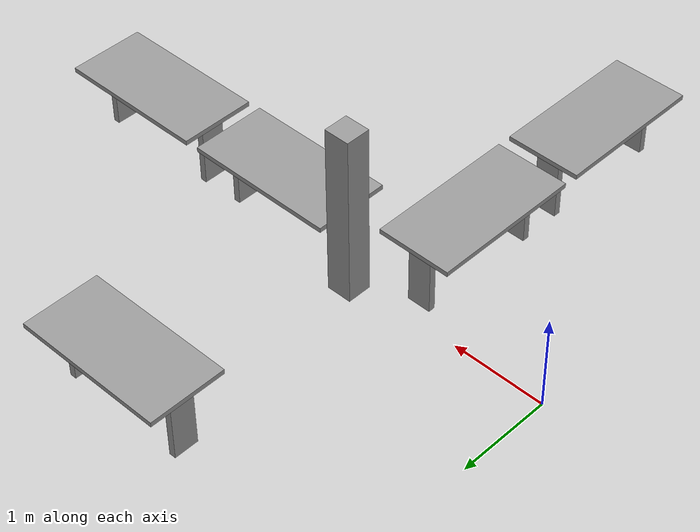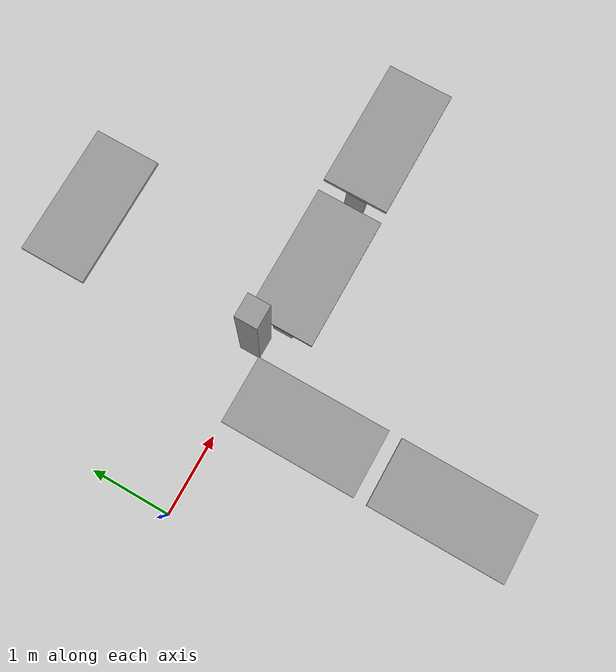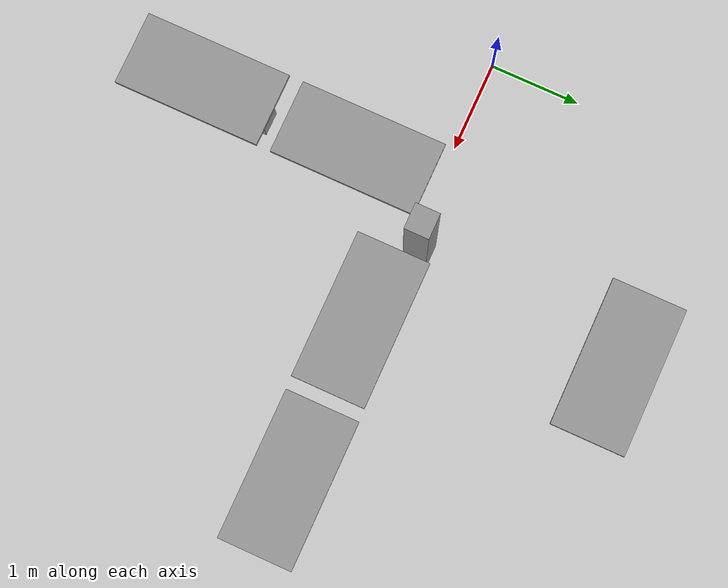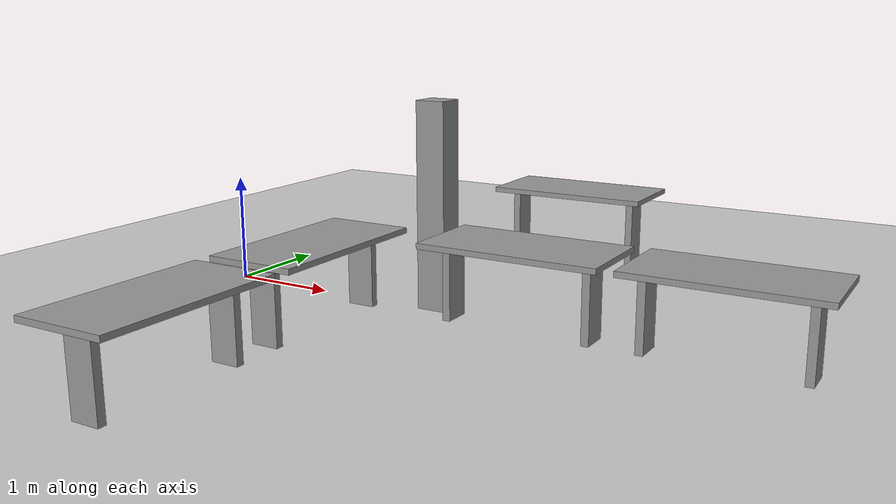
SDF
<sdf version="1.6">
 <world name="default">
  <model name="ground_plane">
   <static>1</static>
   <link name="link">
    <collision name="collision">
     <geometry><plane><normal>0 0 1</normal><size>100 100</size></plane></geometry>
     <surface><friction><ode><mu>100</mu><mu2>50</mu2></ode></friction></surface>
    </collision>
    <visual name="visual">
     <cast_shadows>0</cast_shadows>
     <geometry><plane><normal>0 0 1</normal><size>100 100</size></plane></geometry>
     <material>
      <script><uri>file://media/materials/scripts/gazebo.material</uri><name>Gazebo/Grey</name></script>
     </material>
    </visual>
   </link>
  </model>
  <model name="table2_1_2_clone_0_clone">
   <link name="link_0">
    <pose>0.065308 0.022644 0.260892 0 -0 0</pose>
    <inertial>
     <mass>0.0176486</mass>
     <inertia>
      <ixx>0.00156504</ixx>
      <ixy>0</ixy>
      <ixz>0</ixz>
      <iyy>0.00147786</iyy>
      <iyz>0</iyz>
      <izz>0.00010146</izz>
     </inertia>
    </inertial>
    <visual name="visual">
     <geometry><box><size>0.0697 0.253231 0.7</size></box></geometry>
     <material>
      <lighting>1</lighting>
      <script><uri>file://media/materials/scripts/gazebo.material</uri><name>Gazebo/Grey</name></script>
      <ambient>0.3 0.3 0.3 1</ambient>
      <diffuse>0.7 0.7 0.7 1</diffuse>
      <specular>0.01 0.01 0.01 1</specular>
      <emissive>0 0 0 1</emissive>
      <shader type="vertex"><normal_map>__default__</normal_map></shader>
     </material>
    </visual>
    <collision name="collision">
     <geometry><box><size>0.0697 0.253231 0.7</size></box></geometry>
     <surface>
      <friction>
       <ode><mu>1</mu><mu2>1</mu2><fdir1>0 0 0</fdir1><slip1>0</slip1><slip2>0</slip2></ode>
       <torsional>
        <coefficient>1</coefficient>
        <patch_radius>0</patch_radius>
        <surface_radius>0</surface_radius>
        <use_patch_radius>1</use_patch_radius>
        <ode><slip>0</slip></ode>
       </torsional>
      </friction>
      <bounce><restitution_coefficient>0</restitution_coefficient><threshold>1e+06</threshold></bounce>
      <contact>
       <collide_without_contact>0</collide_without_contact>
       <collide_without_contact_bitmask>1</collide_without_contact_bitmask>
       <collide_bitmask>1</collide_bitmask>
       <ode>
        <soft_cfm>0</soft_cfm>
        <soft_erp>0.2</soft_erp>
        <kp>1e+13</kp>
        <kd>1</kd>
        <max_vel>0.01</max_vel>
        <min_depth>0</min_depth>
       </ode>
       <bullet>
        <split_impulse>1</split_impulse>
        <split_impulse_penetration_threshold>-0.01</split_impulse_penetration_threshold>
        <soft_cfm>0</soft_cfm>
        <soft_erp>0.2</soft_erp>
        <kp>1e+13</kp>
        <kd>1</kd>
       </bullet>
      </contact>
     </surface>
    </collision>
   </link>
   <link name="link_0_clone">
    <pose>1.3547 0.013267 0.260893 0 -0 0</pose>
    <inertial>
     <mass>0.0176486</mass>
     <inertia>
      <ixx>0.00156504</ixx>
      <ixy>0</ixy>
      <ixz>0</ixz>
      <iyy>0.00147786</iyy>
      <iyz>0</iyz>
      <izz>0.00010146</izz>
     </inertia>
    </inertial>
    <visual name="visual">
     <geometry><box><size>0.0697 0.253231 0.7</size></box></geometry>
     <material>
      <lighting>1</lighting>
      <script><uri>file://media/materials/scripts/gazebo.material</uri><name>Gazebo/Grey</name></script>
      <ambient>0.3 0.3 0.3 1</ambient>
      <diffuse>0.7 0.7 0.7 1</diffuse>
      <specular>0.01 0.01 0.01 1</specular>
      <emissive>0 0 0 1</emissive>
      <shader type="vertex"><normal_map>__default__</normal_map></shader>
     </material>
    </visual>
    <collision name="collision">
     <geometry><box><size>0.0697 0.253231 0.7</size></box></geometry>
     <surface>
      <friction>
       <ode><mu>1</mu><mu2>1</mu2><fdir1>0 0 0</fdir1><slip1>0</slip1><slip2>0</slip2></ode>
       <torsional>
        <coefficient>1</coefficient>
        <patch_radius>0</patch_radius>
        <surface_radius>0</surface_radius>
        <use_patch_radius>1</use_patch_radius>
        <ode><slip>0</slip></ode>
       </torsional>
      </friction>
      <bounce><restitution_coefficient>0</restitution_coefficient><threshold>1e+06</threshold></bounce>
      <contact>
       <collide_without_contact>0</collide_without_contact>
       <collide_without_contact_bitmask>1</collide_without_contact_bitmask>
       <collide_bitmask>1</collide_bitmask>
       <ode>
        <soft_cfm>0</soft_cfm>
        <soft_erp>0.2</soft_erp>
        <kp>1e+13</kp>
        <kd>1</kd>
        <max_vel>0.01</max_vel>
        <min_depth>0</min_depth>
       </ode>
       <bullet>
        <split_impulse>1</split_impulse>
        <split_impulse_penetration_threshold>-0.01</split_impulse_penetration_threshold>
        <soft_cfm>0</soft_cfm>
        <soft_erp>0.2</soft_erp>
        <kp>1e+13</kp>
        <kd>1</kd>
       </bullet>
      </contact>
     </surface>
    </collision>
   </link>
   <link name="link_1">
    <pose>0.742636 0.022644 0.617468 0 -0 0</pose>
    <inertial>
     <mass>0.0666298</mass>
     <inertia>
      <ixx>0.00555983</ixx>
      <ixy>0</ixy>
      <ixz>0</ixz>
      <iyy>0.0186674</iyy>
      <iyz>0</iyz>
      <izz>0.0242125</izz>
     </inertia>
    </inertial>
    <visual name="visual">
     <geometry><box><size>1.6 0.8 0.050001</size></box></geometry>
     <material>
      <lighting>1</lighting>
      <script><uri>file://media/materials/scripts/gazebo.material</uri><name>Gazebo/Grey</name></script>
      <ambient>0.3 0.3 0.3 1</ambient>
      <diffuse>0.7 0.7 0.7 1</diffuse>
      <specular>0.01 0.01 0.01 1</specular>
      <emissive>0 0 0 1</emissive>
      <shader type="vertex"><normal_map>__default__</normal_map></shader>
     </material>
    </visual>
    <collision name="collision">
     <geometry><box><size>1.6 0.8 0.050001</size></box></geometry>
     <surface>
      <friction>
       <ode><mu>1000</mu><mu2>1000</mu2><fdir1>0 0 0</fdir1><slip1>0</slip1><slip2>0</slip2></ode>
       <torsional>
        <coefficient>1</coefficient>
        <patch_radius>0</patch_radius>
        <surface_radius>0</surface_radius>
        <use_patch_radius>1</use_patch_radius>
        <ode><slip>0</slip></ode>
       </torsional>
      </friction>
      <bounce><restitution_coefficient>0</restitution_coefficient><threshold>1e+06</threshold></bounce>
      <contact>
       <collide_without_contact>0</collide_without_contact>
       <collide_without_contact_bitmask>1</collide_without_contact_bitmask>
       <collide_bitmask>1</collide_bitmask>
       <ode>
        <soft_cfm>0</soft_cfm>
        <soft_erp>0.2</soft_erp>
        <kp>1e+13</kp>
        <kd>1</kd>
        <max_vel>0.01</max_vel>
        <min_depth>0</min_depth>
       </ode>
       <bullet>
        <split_impulse>1</split_impulse>
        <split_impulse_penetration_threshold>-0.01</split_impulse_penetration_threshold>
        <soft_cfm>0</soft_cfm>
        <soft_erp>0.2</soft_erp>
        <kp>1e+13</kp>
        <kd>1</kd>
       </bullet>
      </contact>
     </surface>
    </collision>
   </link>
   <joint name="link_0_JOINT_0" type="fixed">
    <parent>link_0</parent>
    <child>link_0_clone</child>
    <physics>
     <ode><limit><cfm>0</cfm><erp>0.2</erp></limit><suspension><cfm>0</cfm><erp>0.2</erp></suspension></ode>
    </physics>
   </joint>
   <joint name="link_1_JOINT_1" type="fixed">
    <parent>link_1</parent>
    <child>link_0</child>
    <physics>
     <ode><limit><cfm>0</cfm><erp>0.2</erp></limit><suspension><cfm>0</cfm><erp>0.2</erp></suspension></ode>
    </physics>
   </joint>
   <static>1</static>
   <pose>1.78379 2.41487 0.099338 0 -0 0</pose>
  </model>
  <model name="table2_1_2_clone_0_clone_0">
   <link name="link_0">
    <pose>0.065308 0.022644 0.260892 0 -0 0</pose>
    <inertial>
     <mass>0.0176486</mass>
     <inertia>
      <ixx>0.00156504</ixx>
      <ixy>0</ixy>
      <ixz>0</ixz>
      <iyy>0.00147786</iyy>
      <iyz>0</iyz>
      <izz>0.00010146</izz>
     </inertia>
    </inertial>
    <visual name="visual">
     <geometry><box><size>0.0697 0.253231 0.7</size></box></geometry>
     <material>
      <lighting>1</lighting>
      <script><uri>file://media/materials/scripts/gazebo.material</uri><name>Gazebo/Grey</name></script>
      <ambient>0.3 0.3 0.3 1</ambient>
      <diffuse>0.7 0.7 0.7 1</diffuse>
      <specular>0.01 0.01 0.01 1</specular>
      <emissive>0 0 0 1</emissive>
      <shader type="vertex"><normal_map>__default__</normal_map></shader>
     </material>
    </visual>
    <collision name="collision">
     <geometry><box><size>0.0697 0.253231 0.7</size></box></geometry>
     <surface>
      <friction>
       <ode><mu>1</mu><mu2>1</mu2><fdir1>0 0 0</fdir1><slip1>0</slip1><slip2>0</slip2></ode>
       <torsional>
        <coefficient>1</coefficient>
        <patch_radius>0</patch_radius>
        <surface_radius>0</surface_radius>
        <use_patch_radius>1</use_patch_radius>
        <ode><slip>0</slip></ode>
       </torsional>
      </friction>
      <bounce><restitution_coefficient>0</restitution_coefficient><threshold>1e+06</threshold></bounce>
      <contact>
       <collide_without_contact>0</collide_without_contact>
       <collide_without_contact_bitmask>1</collide_without_contact_bitmask>
       <collide_bitmask>1</collide_bitmask>
       <ode>
        <soft_cfm>0</soft_cfm>
        <soft_erp>0.2</soft_erp>
        <kp>1e+13</kp>
        <kd>1</kd>
        <max_vel>0.01</max_vel>
        <min_depth>0</min_depth>
       </ode>
       <bullet>
        <split_impulse>1</split_impulse>
        <split_impulse_penetration_threshold>-0.01</split_impulse_penetration_threshold>
        <soft_cfm>0</soft_cfm>
        <soft_erp>0.2</soft_erp>
        <kp>1e+13</kp>
        <kd>1</kd>
       </bullet>
      </contact>
     </surface>
    </collision>
   </link>
   <link name="link_0_clone">
    <pose>1.3547 0.013267 0.260893 0 -0 0</pose>
    <inertial>
     <mass>0.0176486</mass>
     <inertia>
      <ixx>0.00156504</ixx>
      <ixy>0</ixy>
      <ixz>0</ixz>
      <iyy>0.00147786</iyy>
      <iyz>0</iyz>
      <izz>0.00010146</izz>
     </inertia>
    </inertial>
    <visual name="visual">
     <geometry><box><size>0.0697 0.253231 0.7</size></box></geometry>
     <material>
      <lighting>1</lighting>
      <script><uri>file://media/materials/scripts/gazebo.material</uri><name>Gazebo/Grey</name></script>
      <ambient>0.3 0.3 0.3 1</ambient>
      <diffuse>0.7 0.7 0.7 1</diffuse>
      <specular>0.01 0.01 0.01 1</specular>
      <emissive>0 0 0 1</emissive>
      <shader type="vertex"><normal_map>__default__</normal_map></shader>
     </material>
    </visual>
    <collision name="collision">
     <geometry><box><size>0.0697 0.253231 0.7</size></box></geometry>
     <surface>
      <friction>
       <ode><mu>1</mu><mu2>1</mu2><fdir1>0 0 0</fdir1><slip1>0</slip1><slip2>0</slip2></ode>
       <torsional>
        <coefficient>1</coefficient>
        <patch_radius>0</patch_radius>
        <surface_radius>0</surface_radius>
        <use_patch_radius>1</use_patch_radius>
        <ode><slip>0</slip></ode>
       </torsional>
      </friction>
      <bounce><restitution_coefficient>0</restitution_coefficient><threshold>1e+06</threshold></bounce>
      <contact>
       <collide_without_contact>0</collide_without_contact>
       <collide_without_contact_bitmask>1</collide_without_contact_bitmask>
       <collide_bitmask>1</collide_bitmask>
       <ode>
        <soft_cfm>0</soft_cfm>
        <soft_erp>0.2</soft_erp>
        <kp>1e+13</kp>
        <kd>1</kd>
        <max_vel>0.01</max_vel>
        <min_depth>0</min_depth>
       </ode>
       <bullet>
        <split_impulse>1</split_impulse>
        <split_impulse_penetration_threshold>-0.01</split_impulse_penetration_threshold>
        <soft_cfm>0</soft_cfm>
        <soft_erp>0.2</soft_erp>
        <kp>1e+13</kp>
        <kd>1</kd>
       </bullet>
      </contact>
     </surface>
    </collision>
   </link>
   <link name="link_1">
    <pose>0.742636 0.022644 0.617468 0 -0 0</pose>
    <inertial>
     <mass>0.0666298</mass>
     <inertia>
      <ixx>0.00555983</ixx>
      <ixy>0</ixy>
      <ixz>0</ixz>
      <iyy>0.0186674</iyy>
      <iyz>0</iyz>
      <izz>0.0242125</izz>
     </inertia>
    </inertial>
    <visual name="visual">
     <geometry><box><size>1.6 0.8 0.050001</size></box></geometry>
     <material>
      <lighting>1</lighting>
      <script><uri>file://media/materials/scripts/gazebo.material</uri><name>Gazebo/Grey</name></script>
      <ambient>0.3 0.3 0.3 1</ambient>
      <diffuse>0.7 0.7 0.7 1</diffuse>
      <specular>0.01 0.01 0.01 1</specular>
      <emissive>0 0 0 1</emissive>
      <shader type="vertex"><normal_map>__default__</normal_map></shader>
     </material>
    </visual>
    <collision name="collision">
     <geometry><box><size>1.6 0.8 0.050001</size></box></geometry>
     <surface>
      <friction>
       <ode><mu>1000</mu><mu2>1000</mu2><fdir1>0 0 0</fdir1><slip1>0</slip1><slip2>0</slip2></ode>
       <torsional>
        <coefficient>1</coefficient>
        <patch_radius>0</patch_radius>
        <surface_radius>0</surface_radius>
        <use_patch_radius>1</use_patch_radius>
        <ode><slip>0</slip></ode>
       </torsional>
      </friction>
      <bounce><restitution_coefficient>0</restitution_coefficient><threshold>1e+06</threshold></bounce>
      <contact>
       <collide_without_contact>0</collide_without_contact>
       <collide_without_contact_bitmask>1</collide_without_contact_bitmask>
       <collide_bitmask>1</collide_bitmask>
       <ode>
        <soft_cfm>0</soft_cfm>
        <soft_erp>0.2</soft_erp>
        <kp>1e+13</kp>
        <kd>1</kd>
        <max_vel>0.01</max_vel>
        <min_depth>0</min_depth>
       </ode>
       <bullet>
        <split_impulse>1</split_impulse>
        <split_impulse_penetration_threshold>-0.01</split_impulse_penetration_threshold>
        <soft_cfm>0</soft_cfm>
        <soft_erp>0.2</soft_erp>
        <kp>1e+13</kp>
        <kd>1</kd>
       </bullet>
      </contact>
     </surface>
    </collision>
   </link>
   <joint name="link_0_JOINT_0" type="fixed">
    <parent>link_0</parent>
    <child>link_0_clone</child>
    <physics>
     <ode><limit><cfm>0</cfm><erp>0.2</erp></limit><suspension><cfm>0</cfm><erp>0.2</erp></suspension></ode>
    </physics>
   </joint>
   <joint name="link_1_JOINT_1" type="fixed">
    <parent>link_1</parent>
    <child>link_0</child>
    <physics>
     <ode><limit><cfm>0</cfm><erp>0.2</erp></limit><suspension><cfm>0</cfm><erp>0.2</erp></suspension></ode>
    </physics>
   </joint>
   <static>1</static>
   <pose>4.14636 -0.113667 0.099338 0 -0 0</pose>
  </model>
  <model name="table2_1_2_clone_0_clone_0_clone">
   <link name="link_0">
    <pose>0.065308 0.022644 0.260892 0 -0 0</pose>
    <inertial>
     <mass>0.0176486</mass>
     <inertia>
      <ixx>0.00156504</ixx>
      <ixy>0</ixy>
      <ixz>0</ixz>
      <iyy>0.00147786</iyy>
      <iyz>0</iyz>
      <izz>0.00010146</izz>
     </inertia>
    </inertial>
    <visual name="visual">
     <geometry><box><size>0.0697 0.253231 0.7</size></box></geometry>
     <material>
      <lighting>1</lighting>
      <script><uri>file://media/materials/scripts/gazebo.material</uri><name>Gazebo/Grey</name></script>
      <ambient>0.3 0.3 0.3 1</ambient>
      <diffuse>0.7 0.7 0.7 1</diffuse>
      <specular>0.01 0.01 0.01 1</specular>
      <emissive>0 0 0 1</emissive>
      <shader type="vertex"><normal_map>__default__</normal_map></shader>
     </material>
    </visual>
    <collision name="collision">
     <geometry><box><size>0.0697 0.253231 0.7</size></box></geometry>
     <surface>
      <friction>
       <ode><mu>1</mu><mu2>1</mu2><fdir1>0 0 0</fdir1><slip1>0</slip1><slip2>0</slip2></ode>
       <torsional>
        <coefficient>1</coefficient>
        <patch_radius>0</patch_radius>
        <surface_radius>0</surface_radius>
        <use_patch_radius>1</use_patch_radius>
        <ode><slip>0</slip></ode>
       </torsional>
      </friction>
      <bounce><restitution_coefficient>0</restitution_coefficient><threshold>1e+06</threshold></bounce>
      <contact>
       <collide_without_contact>0</collide_without_contact>
       <collide_without_contact_bitmask>1</collide_without_contact_bitmask>
       <collide_bitmask>1</collide_bitmask>
       <ode>
        <soft_cfm>0</soft_cfm>
        <soft_erp>0.2</soft_erp>
        <kp>1e+13</kp>
        <kd>1</kd>
        <max_vel>0.01</max_vel>
        <min_depth>0</min_depth>
       </ode>
       <bullet>
        <split_impulse>1</split_impulse>
        <split_impulse_penetration_threshold>-0.01</split_impulse_penetration_threshold>
        <soft_cfm>0</soft_cfm>
        <soft_erp>0.2</soft_erp>
        <kp>1e+13</kp>
        <kd>1</kd>
       </bullet>
      </contact>
     </surface>
    </collision>
   </link>
   <link name="link_0_clone">
    <pose>1.3547 0.013267 0.260893 0 -0 0</pose>
    <inertial>
     <mass>0.0176486</mass>
     <inertia>
      <ixx>0.00156504</ixx>
      <ixy>0</ixy>
      <ixz>0</ixz>
      <iyy>0.00147786</iyy>
      <iyz>0</iyz>
      <izz>0.00010146</izz>
     </inertia>
    </inertial>
    <visual name="visual">
     <geometry><box><size>0.0697 0.253231 0.7</size></box></geometry>
     <material>
      <lighting>1</lighting>
      <script><uri>file://media/materials/scripts/gazebo.material</uri><name>Gazebo/Grey</name></script>
      <ambient>0.3 0.3 0.3 1</ambient>
      <diffuse>0.7 0.7 0.7 1</diffuse>
      <specular>0.01 0.01 0.01 1</specular>
      <emissive>0 0 0 1</emissive>
      <shader type="vertex"><normal_map>__default__</normal_map></shader>
     </material>
    </visual>
    <collision name="collision">
     <geometry><box><size>0.0697 0.253231 0.7</size></box></geometry>
     <surface>
      <friction>
       <ode><mu>1</mu><mu2>1</mu2><fdir1>0 0 0</fdir1><slip1>0</slip1><slip2>0</slip2></ode>
       <torsional>
        <coefficient>1</coefficient>
        <patch_radius>0</patch_radius>
        <surface_radius>0</surface_radius>
        <use_patch_radius>1</use_patch_radius>
        <ode><slip>0</slip></ode>
       </torsional>
      </friction>
      <bounce><restitution_coefficient>0</restitution_coefficient><threshold>1e+06</threshold></bounce>
      <contact>
       <collide_without_contact>0</collide_without_contact>
       <collide_without_contact_bitmask>1</collide_without_contact_bitmask>
       <collide_bitmask>1</collide_bitmask>
       <ode>
        <soft_cfm>0</soft_cfm>
        <soft_erp>0.2</soft_erp>
        <kp>1e+13</kp>
        <kd>1</kd>
        <max_vel>0.01</max_vel>
        <min_depth>0</min_depth>
       </ode>
       <bullet>
        <split_impulse>1</split_impulse>
        <split_impulse_penetration_threshold>-0.01</split_impulse_penetration_threshold>
        <soft_cfm>0</soft_cfm>
        <soft_erp>0.2</soft_erp>
        <kp>1e+13</kp>
        <kd>1</kd>
       </bullet>
      </contact>
     </surface>
    </collision>
   </link>
   <link name="link_1">
    <pose>0.742636 0.022644 0.617468 0 -0 0</pose>
    <inertial>
     <mass>0.0666298</mass>
     <inertia>
      <ixx>0.00555983</ixx>
      <ixy>0</ixy>
      <ixz>0</ixz>
      <iyy>0.0186674</iyy>
      <iyz>0</iyz>
      <izz>0.0242125</izz>
     </inertia>
    </inertial>
    <visual name="visual">
     <geometry><box><size>1.6 0.8 0.050001</size></box></geometry>
     <material>
      <lighting>1</lighting>
      <script><uri>file://media/materials/scripts/gazebo.material</uri><name>Gazebo/Grey</name></script>
      <ambient>0.3 0.3 0.3 1</ambient>
      <diffuse>0.7 0.7 0.7 1</diffuse>
      <specular>0.01 0.01 0.01 1</specular>
      <emissive>0 0 0 1</emissive>
      <shader type="vertex"><normal_map>__default__</normal_map></shader>
     </material>
    </visual>
    <collision name="collision">
     <geometry><box><size>1.6 0.8 0.050001</size></box></geometry>
     <surface>
      <friction>
       <ode><mu>1000</mu><mu2>1000</mu2><fdir1>0 0 0</fdir1><slip1>0</slip1><slip2>0</slip2></ode>
       <torsional>
        <coefficient>1</coefficient>
        <patch_radius>0</patch_radius>
        <surface_radius>0</surface_radius>
        <use_patch_radius>1</use_patch_radius>
        <ode><slip>0</slip></ode>
       </torsional>
      </friction>
      <bounce><restitution_coefficient>0</restitution_coefficient><threshold>1e+06</threshold></bounce>
      <contact>
       <collide_without_contact>0</collide_without_contact>
       <collide_without_contact_bitmask>1</collide_without_contact_bitmask>
       <collide_bitmask>1</collide_bitmask>
       <ode>
        <soft_cfm>0</soft_cfm>
        <soft_erp>0.2</soft_erp>
        <kp>1e+13</kp>
        <kd>1</kd>
        <max_vel>0.01</max_vel>
        <min_depth>0</min_depth>
       </ode>
       <bullet>
        <split_impulse>1</split_impulse>
        <split_impulse_penetration_threshold>-0.01</split_impulse_penetration_threshold>
        <soft_cfm>0</soft_cfm>
        <soft_erp>0.2</soft_erp>
        <kp>1e+13</kp>
        <kd>1</kd>
       </bullet>
      </contact>
     </surface>
    </collision>
   </link>
   <joint name="link_0_JOINT_0" type="fixed">
    <parent>link_0</parent>
    <child>link_0_clone</child>
    <physics>
     <ode><limit><cfm>0</cfm><erp>0.2</erp></limit><suspension><cfm>0</cfm><erp>0.2</erp></suspension></ode>
    </physics>
   </joint>
   <joint name="link_1_JOINT_1" type="fixed">
    <parent>link_1</parent>
    <child>link_0</child>
    <physics>
     <ode><limit><cfm>0</cfm><erp>0.2</erp></limit><suspension><cfm>0</cfm><erp>0.2</erp></suspension></ode>
    </physics>
   </joint>
   <static>1</static>
   <pose>2.40738 -0.122017 0.099338 0 -0 0</pose>
  </model>
  <model name="Pole">
   <link name="link">
    <inertial>
     <mass>1</mass>
     <inertia>
      <ixx>0.166667</ixx>
      <ixy>0</ixy>
      <ixz>0</ixz>
      <iyy>0.166667</iyy>
      <iyz>0</iyz>
      <izz>0.166667</izz>
     </inertia>
    </inertial>
    <visual name="visual">
     <geometry><box><size>0.269963 0.25787 1.85987</size></box></geometry>
     <material>
      <script><name>Gazebo/Grey</name><uri>file://media/materials/scripts/gazebo.material</uri></script>
      <ambient>0.3 0.3 0.3 1</ambient>
      <diffuse>0.7 0.7 0.7 1</diffuse>
      <specular>0.01 0.01 0.01 1</specular>
      <emissive>0 0 0 1</emissive>
     </material>
    </visual>
    <collision name="collision">
     <geometry><box><size>0.269963 0.25787 1.85987</size></box></geometry>
     <surface>
      <friction>
       <ode><mu>1</mu><mu2>1</mu2><fdir1>0 0 0</fdir1><slip1>0</slip1><slip2>0</slip2></ode>
       <torsional>
        <coefficient>1</coefficient>
        <patch_radius>0</patch_radius>
        <surface_radius>0</surface_radius>
        <use_patch_radius>1</use_patch_radius>
        <ode><slip>0</slip></ode>
       </torsional>
      </friction>
      <bounce><restitution_coefficient>0</restitution_coefficient><threshold>1e+06</threshold></bounce>
      <contact>
       <collide_without_contact>0</collide_without_contact>
       <collide_without_contact_bitmask>1</collide_without_contact_bitmask>
       <collide_bitmask>1</collide_bitmask>
       <ode>
        <soft_cfm>0</soft_cfm>
        <soft_erp>0.2</soft_erp>
        <kp>1e+13</kp>
        <kd>1</kd>
        <max_vel>0.01</max_vel>
        <min_depth>0</min_depth>
       </ode>
       <bullet>
        <split_impulse>1</split_impulse>
        <split_impulse_penetration_threshold>-0.01</split_impulse_penetration_threshold>
        <soft_cfm>0</soft_cfm>
        <soft_erp>0.2</soft_erp>
        <kp>1e+13</kp>
        <kd>1</kd>
       </bullet>
      </contact>
     </surface>
    </collision>
   </link>
   <static>1</static>
   <pose>2.18471 0.117689 0.929937 -1e-06 -1e-06 0.000115</pose>
  </model>
  <model name="table2_1_2_clone_0_clone_0_clone_0">
   <link name="link_0">
    <pose>0.065308 0.022644 0.260892 0 -0 0</pose>
    <inertial>
     <mass>0.0176486</mass>
     <inertia>
      <ixx>0.00156504</ixx>
      <ixy>0</ixy>
      <ixz>0</ixz>
      <iyy>0.00147786</iyy>
      <iyz>0</iyz>
      <izz>0.00010146</izz>
     </inertia>
    </inertial>
    <visual name="visual">
     <geometry><box><size>0.0697 0.253231 0.7</size></box></geometry>
     <material>
      <lighting>1</lighting>
      <script><uri>file://media/materials/scripts/gazebo.material</uri><name>Gazebo/Grey</name></script>
      <ambient>0.3 0.3 0.3 1</ambient>
      <diffuse>0.7 0.7 0.7 1</diffuse>
      <specular>0.01 0.01 0.01 1</specular>
      <emissive>0 0 0 1</emissive>
      <shader type="vertex"><normal_map>__default__</normal_map></shader>
     </material>
    </visual>
    <collision name="collision">
     <geometry><box><size>0.0697 0.253231 0.7</size></box></geometry>
     <surface>
      <friction>
       <ode><mu>1</mu><mu2>1</mu2><fdir1>0 0 0</fdir1><slip1>0</slip1><slip2>0</slip2></ode>
       <torsional>
        <coefficient>1</coefficient>
        <patch_radius>0</patch_radius>
        <surface_radius>0</surface_radius>
        <use_patch_radius>1</use_patch_radius>
        <ode><slip>0</slip></ode>
       </torsional>
      </friction>
      <bounce><restitution_coefficient>0</restitution_coefficient><threshold>1e+06</threshold></bounce>
      <contact>
       <collide_without_contact>0</collide_without_contact>
       <collide_without_contact_bitmask>1</collide_without_contact_bitmask>
       <collide_bitmask>1</collide_bitmask>
       <ode>
        <soft_cfm>0</soft_cfm>
        <soft_erp>0.2</soft_erp>
        <kp>1e+13</kp>
        <kd>1</kd>
        <max_vel>0.01</max_vel>
        <min_depth>0</min_depth>
       </ode>
       <bullet>
        <split_impulse>1</split_impulse>
        <split_impulse_penetration_threshold>-0.01</split_impulse_penetration_threshold>
        <soft_cfm>0</soft_cfm>
        <soft_erp>0.2</soft_erp>
        <kp>1e+13</kp>
        <kd>1</kd>
       </bullet>
      </contact>
     </surface>
    </collision>
   </link>
   <link name="link_0_clone">
    <pose>1.3547 0.013267 0.260893 0 -0 0</pose>
    <inertial>
     <mass>0.0176486</mass>
     <inertia>
      <ixx>0.00156504</ixx>
      <ixy>0</ixy>
      <ixz>0</ixz>
      <iyy>0.00147786</iyy>
      <iyz>0</iyz>
      <izz>0.00010146</izz>
     </inertia>
    </inertial>
    <visual name="visual">
     <geometry><box><size>0.0697 0.253231 0.7</size></box></geometry>
     <material>
      <lighting>1</lighting>
      <script><uri>file://media/materials/scripts/gazebo.material</uri><name>Gazebo/Grey</name></script>
      <ambient>0.3 0.3 0.3 1</ambient>
      <diffuse>0.7 0.7 0.7 1</diffuse>
      <specular>0.01 0.01 0.01 1</specular>
      <emissive>0 0 0 1</emissive>
      <shader type="vertex"><normal_map>__default__</normal_map></shader>
     </material>
    </visual>
    <collision name="collision">
     <geometry><box><size>0.0697 0.253231 0.7</size></box></geometry>
     <surface>
      <friction>
       <ode><mu>1</mu><mu2>1</mu2><fdir1>0 0 0</fdir1><slip1>0</slip1><slip2>0</slip2></ode>
       <torsional>
        <coefficient>1</coefficient>
        <patch_radius>0</patch_radius>
        <surface_radius>0</surface_radius>
        <use_patch_radius>1</use_patch_radius>
        <ode><slip>0</slip></ode>
       </torsional>
      </friction>
      <bounce><restitution_coefficient>0</restitution_coefficient><threshold>1e+06</threshold></bounce>
      <contact>
       <collide_without_contact>0</collide_without_contact>
       <collide_without_contact_bitmask>1</collide_without_contact_bitmask>
       <collide_bitmask>1</collide_bitmask>
       <ode>
        <soft_cfm>0</soft_cfm>
        <soft_erp>0.2</soft_erp>
        <kp>1e+13</kp>
        <kd>1</kd>
        <max_vel>0.01</max_vel>
        <min_depth>0</min_depth>
       </ode>
       <bullet>
        <split_impulse>1</split_impulse>
        <split_impulse_penetration_threshold>-0.01</split_impulse_penetration_threshold>
        <soft_cfm>0</soft_cfm>
        <soft_erp>0.2</soft_erp>
        <kp>1e+13</kp>
        <kd>1</kd>
       </bullet>
      </contact>
     </surface>
    </collision>
   </link>
   <link name="link_1">
    <pose>0.742636 0.022644 0.617468 0 -0 0</pose>
    <inertial>
     <mass>0.0666298</mass>
     <inertia>
      <ixx>0.00555983</ixx>
      <ixy>0</ixy>
      <ixz>0</ixz>
      <iyy>0.0186674</iyy>
      <iyz>0</iyz>
      <izz>0.0242125</izz>
     </inertia>
    </inertial>
    <visual name="visual">
     <geometry><box><size>1.6 0.8 0.050001</size></box></geometry>
     <material>
      <lighting>1</lighting>
      <script><uri>file://media/materials/scripts/gazebo.material</uri><name>Gazebo/Grey</name></script>
      <ambient>0.3 0.3 0.3 1</ambient>
      <diffuse>0.7 0.7 0.7 1</diffuse>
      <specular>0.01 0.01 0.01 1</specular>
      <emissive>0 0 0 1</emissive>
      <shader type="vertex"><normal_map>__default__</normal_map></shader>
     </material>
    </visual>
    <collision name="collision">
     <geometry><box><size>1.6 0.8 0.050001</size></box></geometry>
     <surface>
      <friction>
       <ode><mu>1000</mu><mu2>1000</mu2><fdir1>0 0 0</fdir1><slip1>0</slip1><slip2>0</slip2></ode>
       <torsional>
        <coefficient>1</coefficient>
        <patch_radius>0</patch_radius>
        <surface_radius>0</surface_radius>
        <use_patch_radius>1</use_patch_radius>
        <ode><slip>0</slip></ode>
       </torsional>
      </friction>
      <bounce><restitution_coefficient>0</restitution_coefficient><threshold>1e+06</threshold></bounce>
      <contact>
       <collide_without_contact>0</collide_without_contact>
       <collide_without_contact_bitmask>1</collide_without_contact_bitmask>
       <collide_bitmask>1</collide_bitmask>
       <ode>
        <soft_cfm>0</soft_cfm>
        <soft_erp>0.2</soft_erp>
        <kp>1e+13</kp>
        <kd>1</kd>
        <max_vel>0.01</max_vel>
        <min_depth>0</min_depth>
       </ode>
       <bullet>
        <split_impulse>1</split_impulse>
        <split_impulse_penetration_threshold>-0.01</split_impulse_penetration_threshold>
        <soft_cfm>0</soft_cfm>
        <soft_erp>0.2</soft_erp>
        <kp>1e+13</kp>
        <kd>1</kd>
       </bullet>
      </contact>
     </surface>
    </collision>
   </link>
   <joint name="link_0_JOINT_0" type="fixed">
    <parent>link_0</parent>
    <child>link_0_clone</child>
    <physics>
     <ode><limit><cfm>0</cfm><erp>0.2</erp></limit><suspension><cfm>0</cfm><erp>0.2</erp></suspension></ode>
    </physics>
   </joint>
   <joint name="link_1_JOINT_1" type="fixed">
    <parent>link_1</parent>
    <child>link_0</child>
    <physics>
     <ode><limit><cfm>0</cfm><erp>0.2</erp></limit><suspension><cfm>0</cfm><erp>0.2</erp></suspension></ode>
    </physics>
   </joint>
   <static>1</static>
   <pose>1.54327 -0.114098 0.099338 0 0 -1.57221</pose>
  </model>
  <model name="table2_1_2_clone_0_clone_0_clone_0_clone">
   <link name="link_0">
    <pose>0.065308 0.022644 0.260892 0 -0 0</pose>
    <inertial>
     <mass>0.0176486</mass>
     <inertia>
      <ixx>0.00156504</ixx>
      <ixy>0</ixy>
      <ixz>0</ixz>
      <iyy>0.00147786</iyy>
      <iyz>0</iyz>
      <izz>0.00010146</izz>
     </inertia>
    </inertial>
    <visual name="visual">
     <geometry><box><size>0.0697 0.253231 0.7</size></box></geometry>
     <material>
      <lighting>1</lighting>
      <script><uri>file://media/materials/scripts/gazebo.material</uri><name>Gazebo/Grey</name></script>
      <ambient>0.3 0.3 0.3 1</ambient>
      <diffuse>0.7 0.7 0.7 1</diffuse>
      <specular>0.01 0.01 0.01 1</specular>
      <emissive>0 0 0 1</emissive>
      <shader type="vertex"><normal_map>__default__</normal_map></shader>
     </material>
    </visual>
    <collision name="collision">
     <geometry><box><size>0.0697 0.253231 0.7</size></box></geometry>
     <surface>
      <friction>
       <ode><mu>1</mu><mu2>1</mu2><fdir1>0 0 0</fdir1><slip1>0</slip1><slip2>0</slip2></ode>
       <torsional>
        <coefficient>1</coefficient>
        <patch_radius>0</patch_radius>
        <surface_radius>0</surface_radius>
        <use_patch_radius>1</use_patch_radius>
        <ode><slip>0</slip></ode>
       </torsional>
      </friction>
      <bounce><restitution_coefficient>0</restitution_coefficient><threshold>1e+06</threshold></bounce>
      <contact>
       <collide_without_contact>0</collide_without_contact>
       <collide_without_contact_bitmask>1</collide_without_contact_bitmask>
       <collide_bitmask>1</collide_bitmask>
       <ode>
        <soft_cfm>0</soft_cfm>
        <soft_erp>0.2</soft_erp>
        <kp>1e+13</kp>
        <kd>1</kd>
        <max_vel>0.01</max_vel>
        <min_depth>0</min_depth>
       </ode>
       <bullet>
        <split_impulse>1</split_impulse>
        <split_impulse_penetration_threshold>-0.01</split_impulse_penetration_threshold>
        <soft_cfm>0</soft_cfm>
        <soft_erp>0.2</soft_erp>
        <kp>1e+13</kp>
        <kd>1</kd>
       </bullet>
      </contact>
     </surface>
    </collision>
   </link>
   <link name="link_0_clone">
    <pose>1.3547 0.013267 0.260893 0 -0 0</pose>
    <inertial>
     <mass>0.0176486</mass>
     <inertia>
      <ixx>0.00156504</ixx>
      <ixy>0</ixy>
      <ixz>0</ixz>
      <iyy>0.00147786</iyy>
      <iyz>0</iyz>
      <izz>0.00010146</izz>
     </inertia>
    </inertial>
    <visual name="visual">
     <geometry><box><size>0.0697 0.253231 0.7</size></box></geometry>
     <material>
      <lighting>1</lighting>
      <script><uri>file://media/materials/scripts/gazebo.material</uri><name>Gazebo/Grey</name></script>
      <ambient>0.3 0.3 0.3 1</ambient>
      <diffuse>0.7 0.7 0.7 1</diffuse>
      <specular>0.01 0.01 0.01 1</specular>
      <emissive>0 0 0 1</emissive>
      <shader type="vertex"><normal_map>__default__</normal_map></shader>
     </material>
    </visual>
    <collision name="collision">
     <geometry><box><size>0.0697 0.253231 0.7</size></box></geometry>
     <surface>
      <friction>
       <ode><mu>1</mu><mu2>1</mu2><fdir1>0 0 0</fdir1><slip1>0</slip1><slip2>0</slip2></ode>
       <torsional>
        <coefficient>1</coefficient>
        <patch_radius>0</patch_radius>
        <surface_radius>0</surface_radius>
        <use_patch_radius>1</use_patch_radius>
        <ode><slip>0</slip></ode>
       </torsional>
      </friction>
      <bounce><restitution_coefficient>0</restitution_coefficient><threshold>1e+06</threshold></bounce>
      <contact>
       <collide_without_contact>0</collide_without_contact>
       <collide_without_contact_bitmask>1</collide_without_contact_bitmask>
       <collide_bitmask>1</collide_bitmask>
       <ode>
        <soft_cfm>0</soft_cfm>
        <soft_erp>0.2</soft_erp>
        <kp>1e+13</kp>
        <kd>1</kd>
        <max_vel>0.01</max_vel>
        <min_depth>0</min_depth>
       </ode>
       <bullet>
        <split_impulse>1</split_impulse>
        <split_impulse_penetration_threshold>-0.01</split_impulse_penetration_threshold>
        <soft_cfm>0</soft_cfm>
        <soft_erp>0.2</soft_erp>
        <kp>1e+13</kp>
        <kd>1</kd>
       </bullet>
      </contact>
     </surface>
    </collision>
   </link>
   <link name="link_1">
    <pose>0.742636 0.022644 0.617468 0 -0 0</pose>
    <inertial>
     <mass>0.0666298</mass>
     <inertia>
      <ixx>0.00555983</ixx>
      <ixy>0</ixy>
      <ixz>0</ixz>
      <iyy>0.0186674</iyy>
      <iyz>0</iyz>
      <izz>0.0242125</izz>
     </inertia>
    </inertial>
    <visual name="visual">
     <geometry><box><size>1.6 0.8 0.050001</size></box></geometry>
     <material>
      <lighting>1</lighting>
      <script><uri>file://media/materials/scripts/gazebo.material</uri><name>Gazebo/Grey</name></script>
      <ambient>0.3 0.3 0.3 1</ambient>
      <diffuse>0.7 0.7 0.7 1</diffuse>
      <specular>0.01 0.01 0.01 1</specular>
      <emissive>0 0 0 1</emissive>
      <shader type="vertex"><normal_map>__default__</normal_map></shader>
     </material>
    </visual>
    <collision name="collision">
     <geometry><box><size>1.6 0.8 0.050001</size></box></geometry>
     <surface>
      <friction>
       <ode><mu>1000</mu><mu2>1000</mu2><fdir1>0 0 0</fdir1><slip1>0</slip1><slip2>0</slip2></ode>
       <torsional>
        <coefficient>1</coefficient>
        <patch_radius>0</patch_radius>
        <surface_radius>0</surface_radius>
        <use_patch_radius>1</use_patch_radius>
        <ode><slip>0</slip></ode>
       </torsional>
      </friction>
      <bounce><restitution_coefficient>0</restitution_coefficient><threshold>1e+06</threshold></bounce>
      <contact>
       <collide_without_contact>0</collide_without_contact>
       <collide_without_contact_bitmask>1</collide_without_contact_bitmask>
       <collide_bitmask>1</collide_bitmask>
       <ode>
        <soft_cfm>0</soft_cfm>
        <soft_erp>0.2</soft_erp>
        <kp>1e+13</kp>
        <kd>1</kd>
        <max_vel>0.01</max_vel>
        <min_depth>0</min_depth>
       </ode>
       <bullet>
        <split_impulse>1</split_impulse>
        <split_impulse_penetration_threshold>-0.01</split_impulse_penetration_threshold>
        <soft_cfm>0</soft_cfm>
        <soft_erp>0.2</soft_erp>
        <kp>1e+13</kp>
        <kd>1</kd>
       </bullet>
      </contact>
     </surface>
    </collision>
   </link>
   <joint name="link_0_JOINT_0" type="fixed">
    <parent>link_0</parent>
    <child>link_0_clone</child>
    <physics>
     <ode><limit><cfm>0</cfm><erp>0.2</erp></limit><suspension><cfm>0</cfm><erp>0.2</erp></suspension></ode>
    </physics>
   </joint>
   <joint name="link_1_JOINT_1" type="fixed">
    <parent>link_1</parent>
    <child>link_0</child>
    <physics>
     <ode><limit><cfm>0</cfm><erp>0.2</erp></limit><suspension><cfm>0</cfm><erp>0.2</erp></suspension></ode>
    </physics>
   </joint>
   <static>1</static>
   <pose>1.54005 -1.86723 0.099338 0 0 -1.57221</pose>
  </model>
 </world>
</sdf>
